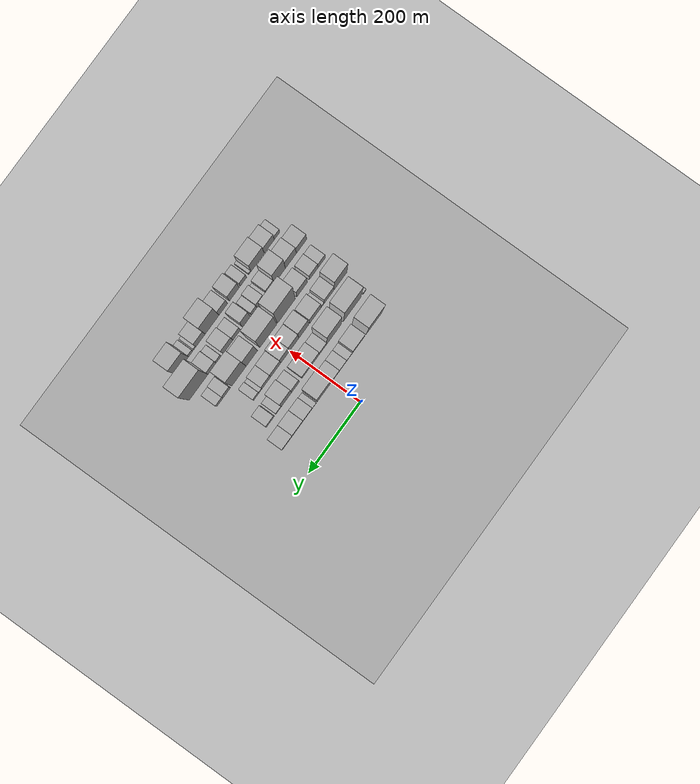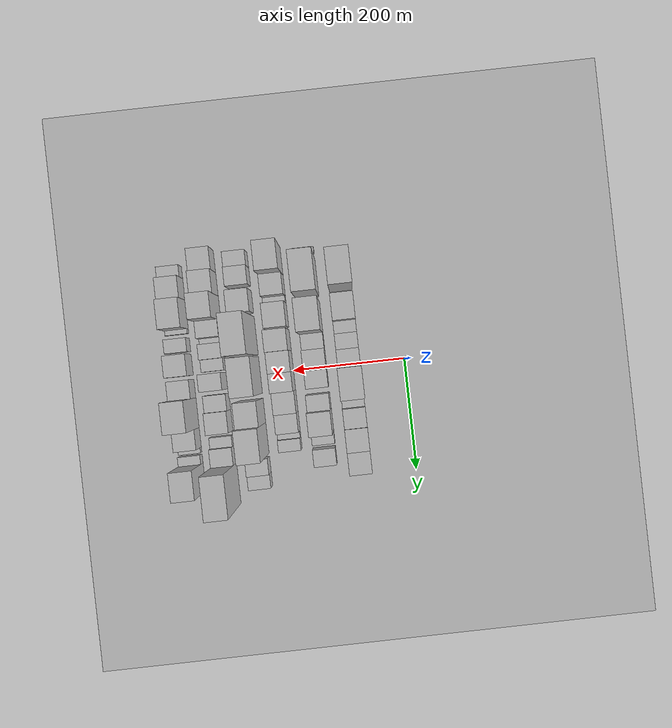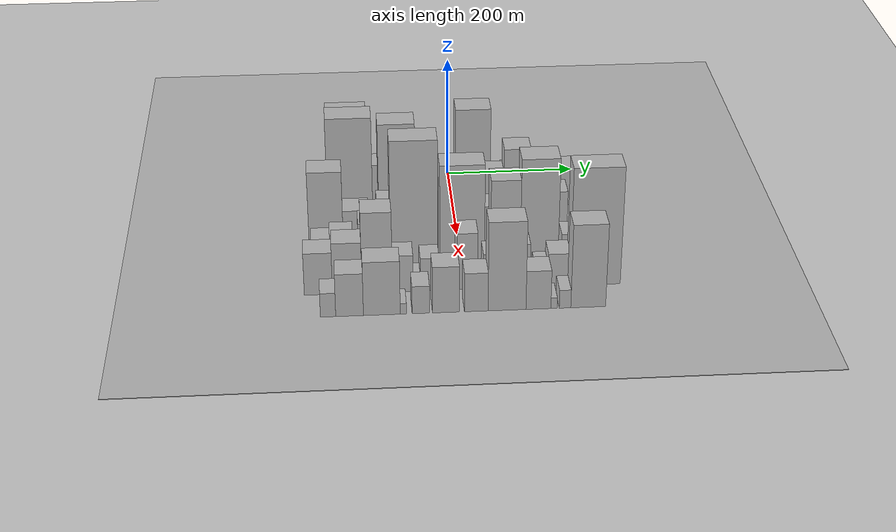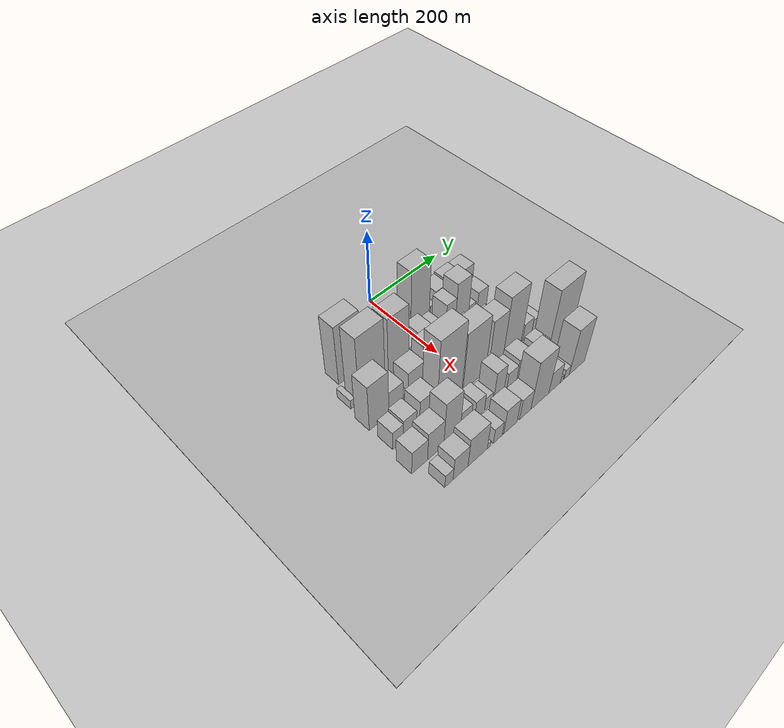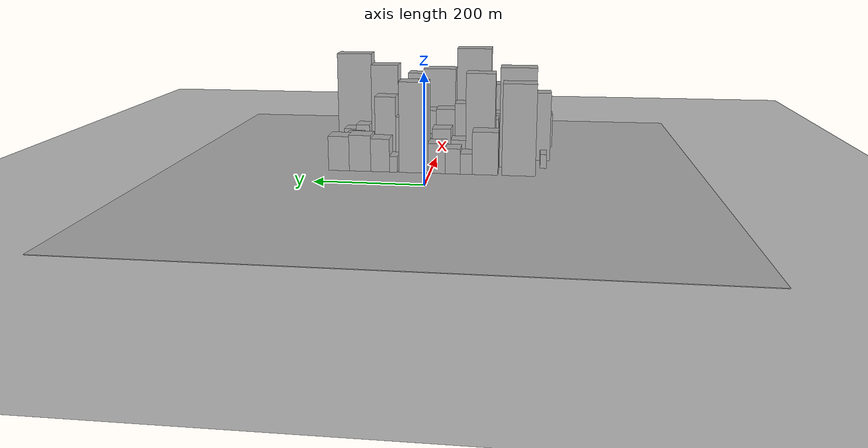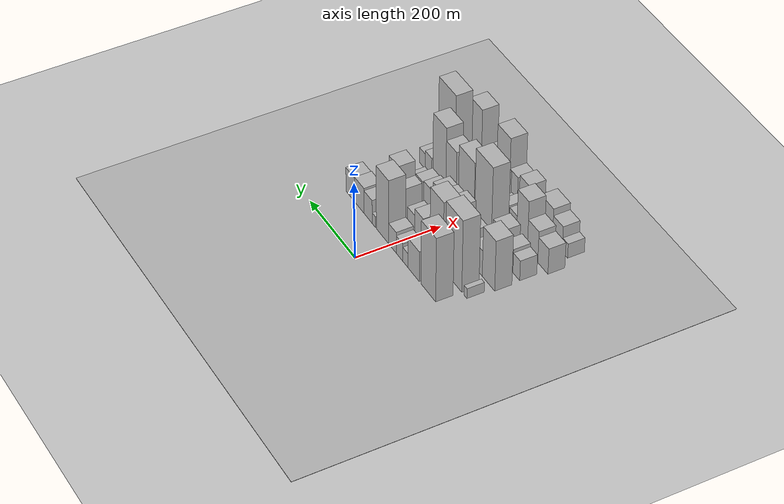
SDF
<sdf version="1.6">
 <world name="default">
  <include><name>ground_plane_1</name><uri>model://HANNAS_ground_plane</uri></include>
  <include>
   <name>ground_plane_2</name>
   <uri>model://HANNAS_ground_plane</uri>
   <pose>100 0 0  0 0 0</pose>
  </include>
  <model name="building_25">
   <static>1</static>
   <pose>100.0000 -163.9431 0 0.000000 0.000000 0.000000</pose>
   <link name="link">
    <pose>0 0 85.50 0 0 0</pose>
    <collision name="collision"><geometry><box><size>40.0000 61.6196 171.0000</size></box></geometry></collision>
    <visual name="visual">
     <cast_shadows>0</cast_shadows>
     <geometry><box><size>40.0000 61.6196 171.0000</size></box></geometry>
     <material>
      <script>
       <uri>model://HANNAS_wall/materials/scripts</uri>
       <uri>model://HANNAS_wall/materials/textures</uri>
       <name>vrc/HANNAS_wall</name>
      </script>
     </material>
    </visual>
   </link>
  </model>
  <model name="building_26">
   <static>1</static>
   <pose>100.0000 -102.3194 0 0.000000 0.000000 0.000000</pose>
   <link name="link">
    <pose>0 0 40.50 0 0 0</pose>
    <collision name="collision"><geometry><box><size>40.0000 47.6278 81.0000</size></box></geometry></collision>
    <visual name="visual">
     <cast_shadows>0</cast_shadows>
     <geometry><box><size>40.0000 47.6278 81.0000</size></box></geometry>
     <material>
      <script>
       <uri>model://HANNAS_wall/materials/scripts</uri>
       <uri>model://HANNAS_wall/materials/textures</uri>
       <name>vrc/HANNAS_wall</name>
      </script>
     </material>
    </visual>
   </link>
  </model>
  <model name="building_27">
   <static>1</static>
   <pose>100.0000 -67.4744 0 0.000000 0.000000 0.000000</pose>
   <link name="link">
    <pose>0 0 19.50 0 0 0</pose>
    <collision name="collision"><geometry><box><size>40.0000 22.0623 39.0000</size></box></geometry></collision>
    <visual name="visual">
     <cast_shadows>0</cast_shadows>
     <geometry><box><size>40.0000 22.0623 39.0000</size></box></geometry>
     <material>
      <script>
       <uri>model://HANNAS_wall/materials/scripts</uri>
       <uri>model://HANNAS_wall/materials/textures</uri>
       <name>vrc/HANNAS_wall</name>
      </script>
     </material>
    </visual>
   </link>
  </model>
  <model name="building_28">
   <static>1</static>
   <pose>100.0000 -42.3867 0 0.000000 0.000000 0.000000</pose>
   <link name="link">
    <pose>0 0 24.00 0 0 0</pose>
    <collision name="collision"><geometry><box><size>40.0000 28.1130 48.0000</size></box></geometry></collision>
    <visual name="visual">
     <cast_shadows>0</cast_shadows>
     <geometry><box><size>40.0000 28.1130 48.0000</size></box></geometry>
     <material>
      <script>
       <uri>model://HANNAS_wall/materials/scripts</uri>
       <uri>model://HANNAS_wall/materials/textures</uri>
       <name>vrc/HANNAS_wall</name>
      </script>
     </material>
    </visual>
   </link>
  </model>
  <model name="building_29">
   <static>1</static>
   <pose>100.0000 -12.2893 0 0.000000 0.000000 0.000000</pose>
   <link name="link">
    <pose>0 0 28.50 0 0 0</pose>
    <collision name="collision"><geometry><box><size>40.0000 32.0819 57.0000</size></box></geometry></collision>
    <visual name="visual">
     <cast_shadows>0</cast_shadows>
     <geometry><box><size>40.0000 32.0819 57.0000</size></box></geometry>
     <material>
      <script>
       <uri>model://HANNAS_wall/materials/scripts</uri>
       <uri>model://HANNAS_wall/materials/textures</uri>
       <name>vrc/HANNAS_wall</name>
      </script>
     </material>
    </visual>
   </link>
  </model>
  <model name="building_30">
   <static>1</static>
   <pose>100.0000 30.7416 0 0.000000 0.000000 0.000000</pose>
   <link name="link">
    <pose>0 0 85.50 0 0 0</pose>
    <collision name="collision"><geometry><box><size>40.0000 53.9798 171.0000</size></box></geometry></collision>
    <visual name="visual">
     <cast_shadows>0</cast_shadows>
     <geometry><box><size>40.0000 53.9798 171.0000</size></box></geometry>
     <material>
      <script>
       <uri>model://HANNAS_wall/materials/scripts</uri>
       <uri>model://HANNAS_wall/materials/textures</uri>
       <name>vrc/HANNAS_wall</name>
      </script>
     </material>
    </visual>
   </link>
  </model>
  <model name="building_31">
   <static>1</static>
   <pose>100.0000 68.3412 0 0.000000 0.000000 0.000000</pose>
   <link name="link">
    <pose>0 0 15.00 0 0 0</pose>
    <collision name="collision"><geometry><box><size>40.0000 15.2195 30.0000</size></box></geometry></collision>
    <visual name="visual">
     <cast_shadows>0</cast_shadows>
     <geometry><box><size>40.0000 15.2195 30.0000</size></box></geometry>
     <material>
      <script>
       <uri>model://HANNAS_wall/materials/scripts</uri>
       <uri>model://HANNAS_wall/materials/textures</uri>
       <name>vrc/HANNAS_wall</name>
      </script>
     </material>
    </visual>
   </link>
  </model>
  <model name="building_32">
   <static>1</static>
   <pose>100.0000 93.6684 0 0.000000 0.000000 0.000000</pose>
   <link name="link">
    <pose>0 0 31.50 0 0 0</pose>
    <collision name="collision"><geometry><box><size>40.0000 35.4347 63.0000</size></box></geometry></collision>
    <visual name="visual">
     <cast_shadows>0</cast_shadows>
     <geometry><box><size>40.0000 35.4347 63.0000</size></box></geometry>
     <material>
      <script>
       <uri>model://HANNAS_wall/materials/scripts</uri>
       <uri>model://HANNAS_wall/materials/textures</uri>
       <name>vrc/HANNAS_wall</name>
      </script>
     </material>
    </visual>
   </link>
  </model>
  <model name="building_33">
   <static>1</static>
   <pose>100.0000 131.9155 0 0.000000 0.000000 0.000000</pose>
   <link name="link">
    <pose>0 0 34.50 0 0 0</pose>
    <collision name="collision"><geometry><box><size>40.0000 41.0596 69.0000</size></box></geometry></collision>
    <visual name="visual">
     <cast_shadows>0</cast_shadows>
     <geometry><box><size>40.0000 41.0596 69.0000</size></box></geometry>
     <material>
      <script>
       <uri>model://HANNAS_wall/materials/scripts</uri>
       <uri>model://HANNAS_wall/materials/textures</uri>
       <name>vrc/HANNAS_wall</name>
      </script>
     </material>
    </visual>
   </link>
  </model>
  <model name="building_34">
   <static>1</static>
   <pose>100.0000 172.2062 0 0.000000 0.000000 0.000000</pose>
   <link name="link">
    <pose>0 0 33.00 0 0 0</pose>
    <collision name="collision"><geometry><box><size>40.0000 39.5216 66.0000</size></box></geometry></collision>
    <visual name="visual">
     <cast_shadows>0</cast_shadows>
     <geometry><box><size>40.0000 39.5216 66.0000</size></box></geometry>
     <material>
      <script>
       <uri>model://HANNAS_wall/materials/scripts</uri>
       <uri>model://HANNAS_wall/materials/textures</uri>
       <name>vrc/HANNAS_wall</name>
      </script>
     </material>
    </visual>
   </link>
  </model>
  <model name="building_77">
   <static>1</static>
   <pose>160.0000 -210.0299 0 0.000000 0.000000 0.000000</pose>
   <link name="link">
    <pose>0 0 13.50 0 0 0</pose>
    <collision name="collision"><geometry><box><size>40.0000 11.9604 27.0000</size></box></geometry></collision>
    <visual name="visual">
     <cast_shadows>0</cast_shadows>
     <geometry><box><size>40.0000 11.9604 27.0000</size></box></geometry>
     <material>
      <script>
       <uri>model://HANNAS_wall/materials/scripts</uri>
       <uri>model://HANNAS_wall/materials/textures</uri>
       <name>vrc/HANNAS_wall</name>
      </script>
     </material>
    </visual>
   </link>
  </model>
  <model name="building_78">
   <static>1</static>
   <pose>160.0000 -160.8202 0 0.000000 0.000000 0.000000</pose>
   <link name="link">
    <pose>0 0 96.00 0 0 0</pose>
    <collision name="collision"><geometry><box><size>40.0000 68.4589 192.0000</size></box></geometry></collision>
    <visual name="visual">
     <cast_shadows>0</cast_shadows>
     <geometry><box><size>40.0000 68.4589 192.0000</size></box></geometry>
     <material>
      <script>
       <uri>model://HANNAS_wall/materials/scripts</uri>
       <uri>model://HANNAS_wall/materials/textures</uri>
       <name>vrc/HANNAS_wall</name>
      </script>
     </material>
    </visual>
   </link>
  </model>
  <model name="building_79">
   <static>1</static>
   <pose>160.0000 -89.7848 0 0.000000 0.000000 0.000000</pose>
   <link name="link">
    <pose>0 0 90.00 0 0 0</pose>
    <collision name="collision"><geometry><box><size>40.0000 55.6120 180.0000</size></box></geometry></collision>
    <visual name="visual">
     <cast_shadows>0</cast_shadows>
     <geometry><box><size>40.0000 55.6120 180.0000</size></box></geometry>
     <material>
      <script>
       <uri>model://HANNAS_wall/materials/scripts</uri>
       <uri>model://HANNAS_wall/materials/textures</uri>
       <name>vrc/HANNAS_wall</name>
      </script>
     </material>
    </visual>
   </link>
  </model>
  <model name="building_80">
   <static>1</static>
   <pose>160.0000 -47.7329 0 0.000000 0.000000 0.000000</pose>
   <link name="link">
    <pose>0 0 25.50 0 0 0</pose>
    <collision name="collision"><geometry><box><size>40.0000 28.4916 51.0000</size></box></geometry></collision>
    <visual name="visual">
     <cast_shadows>0</cast_shadows>
     <geometry><box><size>40.0000 28.4916 51.0000</size></box></geometry>
     <material>
      <script>
       <uri>model://HANNAS_wall/materials/scripts</uri>
       <uri>model://HANNAS_wall/materials/textures</uri>
       <name>vrc/HANNAS_wall</name>
      </script>
     </material>
    </visual>
   </link>
  </model>
  <model name="building_81">
   <static>1</static>
   <pose>160.0000 -15.4796 0 0.000000 0.000000 0.000000</pose>
   <link name="link">
    <pose>0 0 36.00 0 0 0</pose>
    <collision name="collision"><geometry><box><size>40.0000 36.0150 72.0000</size></box></geometry></collision>
    <visual name="visual">
     <cast_shadows>0</cast_shadows>
     <geometry><box><size>40.0000 36.0150 72.0000</size></box></geometry>
     <material>
      <script>
       <uri>model://HANNAS_wall/materials/scripts</uri>
       <uri>model://HANNAS_wall/materials/textures</uri>
       <name>vrc/HANNAS_wall</name>
      </script>
     </material>
    </visual>
   </link>
  </model>
  <model name="building_82">
   <static>1</static>
   <pose>160.0000 18.4405 0 0.000000 0.000000 0.000000</pose>
   <link name="link">
    <pose>0 0 27.00 0 0 0</pose>
    <collision name="collision"><geometry><box><size>40.0000 31.8252 54.0000</size></box></geometry></collision>
    <visual name="visual">
     <cast_shadows>0</cast_shadows>
     <geometry><box><size>40.0000 31.8252 54.0000</size></box></geometry>
     <material>
      <script>
       <uri>model://HANNAS_wall/materials/scripts</uri>
       <uri>model://HANNAS_wall/materials/textures</uri>
       <name>vrc/HANNAS_wall</name>
      </script>
     </material>
    </visual>
   </link>
  </model>
  <model name="building_83">
   <static>1</static>
   <pose>160.0000 58.7880 0 0.000000 0.000000 0.000000</pose>
   <link name="link">
    <pose>0 0 46.50 0 0 0</pose>
    <collision name="collision"><geometry><box><size>40.0000 28.8698 93.0000</size></box></geometry></collision>
    <visual name="visual">
     <cast_shadows>0</cast_shadows>
     <geometry><box><size>40.0000 28.8698 93.0000</size></box></geometry>
     <material>
      <script>
       <uri>model://HANNAS_wall/materials/scripts</uri>
       <uri>model://HANNAS_wall/materials/textures</uri>
       <name>vrc/HANNAS_wall</name>
      </script>
     </material>
    </visual>
   </link>
  </model>
  <model name="building_84">
   <static>1</static>
   <pose>160.0000 93.4086 0 0.000000 0.000000 0.000000</pose>
   <link name="link">
    <pose>0 0 66.00 0 0 0</pose>
    <collision name="collision"><geometry><box><size>40.0000 40.3714 132.0000</size></box></geometry></collision>
    <visual name="visual">
     <cast_shadows>0</cast_shadows>
     <geometry><box><size>40.0000 40.3714 132.0000</size></box></geometry>
     <material>
      <script>
       <uri>model://HANNAS_wall/materials/scripts</uri>
       <uri>model://HANNAS_wall/materials/textures</uri>
       <name>vrc/HANNAS_wall</name>
      </script>
     </material>
    </visual>
   </link>
  </model>
  <model name="building_85">
   <static>1</static>
   <pose>160.0000 124.3804 0 0.000000 0.000000 0.000000</pose>
   <link name="link">
    <pose>0 0 18.00 0 0 0</pose>
    <collision name="collision"><geometry><box><size>40.0000 21.5722 36.0000</size></box></geometry></collision>
    <visual name="visual">
     <cast_shadows>0</cast_shadows>
     <geometry><box><size>40.0000 21.5722 36.0000</size></box></geometry>
     <material>
      <script>
       <uri>model://HANNAS_wall/materials/scripts</uri>
       <uri>model://HANNAS_wall/materials/textures</uri>
       <name>vrc/HANNAS_wall</name>
      </script>
     </material>
    </visual>
   </link>
  </model>
  <model name="building_86">
   <static>1</static>
   <pose>160.0000 156.3313 0 0.000000 0.000000 0.000000</pose>
   <link name="link">
    <pose>0 0 28.50 0 0 0</pose>
    <collision name="collision"><geometry><box><size>40.0000 30.3295 57.0000</size></box></geometry></collision>
    <visual name="visual">
     <cast_shadows>0</cast_shadows>
     <geometry><box><size>40.0000 30.3295 57.0000</size></box></geometry>
     <material>
      <script>
       <uri>model://HANNAS_wall/materials/scripts</uri>
       <uri>model://HANNAS_wall/materials/textures</uri>
       <name>vrc/HANNAS_wall</name>
      </script>
     </material>
    </visual>
   </link>
  </model>
  <model name="building_133">
   <static>1</static>
   <pose>220.0000 -198.3228 0 0.000000 0.000000 0.000000</pose>
   <link name="link">
    <pose>0 0 67.50 0 0 0</pose>
    <collision name="collision"><geometry><box><size>40.0000 50.7325 135.0000</size></box></geometry></collision>
    <visual name="visual">
     <cast_shadows>0</cast_shadows>
     <geometry><box><size>40.0000 50.7325 135.0000</size></box></geometry>
     <material>
      <script>
       <uri>model://HANNAS_wall/materials/scripts</uri>
       <uri>model://HANNAS_wall/materials/textures</uri>
       <name>vrc/HANNAS_wall</name>
      </script>
     </material>
    </visual>
   </link>
  </model>
  <model name="building_134">
   <static>1</static>
   <pose>220.0000 -153.9247 0 0.000000 0.000000 0.000000</pose>
   <link name="link">
    <pose>0 0 34.50 0 0 0</pose>
    <collision name="collision"><geometry><box><size>40.0000 38.0637 69.0000</size></box></geometry></collision>
    <visual name="visual">
     <cast_shadows>0</cast_shadows>
     <geometry><box><size>40.0000 38.0637 69.0000</size></box></geometry>
     <material>
      <script>
       <uri>model://HANNAS_wall/materials/scripts</uri>
       <uri>model://HANNAS_wall/materials/textures</uri>
       <name>vrc/HANNAS_wall</name>
      </script>
     </material>
    </visual>
   </link>
  </model>
  <model name="building_135">
   <static>1</static>
   <pose>220.0000 -128.4910 0 0.000000 0.000000 0.000000</pose>
   <link name="link">
    <pose>0 0 13.50 0 0 0</pose>
    <collision name="collision"><geometry><box><size>40.0000 12.8037 27.0000</size></box></geometry></collision>
    <visual name="visual">
     <cast_shadows>0</cast_shadows>
     <geometry><box><size>40.0000 12.8037 27.0000</size></box></geometry>
     <material>
      <script>
       <uri>model://HANNAS_wall/materials/scripts</uri>
       <uri>model://HANNAS_wall/materials/textures</uri>
       <name>vrc/HANNAS_wall</name>
      </script>
     </material>
    </visual>
   </link>
  </model>
  <model name="building_136">
   <static>1</static>
   <pose>220.0000 -100.1214 0 0.000000 0.000000 0.000000</pose>
   <link name="link">
    <pose>0 0 40.50 0 0 0</pose>
    <collision name="collision"><geometry><box><size>40.0000 43.9356 81.0000</size></box></geometry></collision>
    <visual name="visual">
     <cast_shadows>0</cast_shadows>
     <geometry><box><size>40.0000 43.9356 81.0000</size></box></geometry>
     <material>
      <script>
       <uri>model://HANNAS_wall/materials/scripts</uri>
       <uri>model://HANNAS_wall/materials/textures</uri>
       <name>vrc/HANNAS_wall</name>
      </script>
     </material>
    </visual>
   </link>
  </model>
  <model name="building_137">
   <static>1</static>
   <pose>220.0000 -55.1766 0 0.000000 0.000000 0.000000</pose>
   <link name="link">
    <pose>0 0 55.50 0 0 0</pose>
    <collision name="collision"><geometry><box><size>40.0000 37.9541 111.0000</size></box></geometry></collision>
    <visual name="visual">
     <cast_shadows>0</cast_shadows>
     <geometry><box><size>40.0000 37.9541 111.0000</size></box></geometry>
     <material>
      <script>
       <uri>model://HANNAS_wall/materials/scripts</uri>
       <uri>model://HANNAS_wall/materials/textures</uri>
       <name>vrc/HANNAS_wall</name>
      </script>
     </material>
    </visual>
   </link>
  </model>
  <model name="building_138">
   <static>1</static>
   <pose>220.0000 -17.7515 0 0.000000 0.000000 0.000000</pose>
   <link name="link">
    <pose>0 0 49.50 0 0 0</pose>
    <collision name="collision"><geometry><box><size>40.0000 36.8961 99.0000</size></box></geometry></collision>
    <visual name="visual">
     <cast_shadows>0</cast_shadows>
     <geometry><box><size>40.0000 36.8961 99.0000</size></box></geometry>
     <material>
      <script>
       <uri>model://HANNAS_wall/materials/scripts</uri>
       <uri>model://HANNAS_wall/materials/textures</uri>
       <name>vrc/HANNAS_wall</name>
      </script>
     </material>
    </visual>
   </link>
  </model>
  <model name="building_139">
   <static>1</static>
   <pose>220.0000 17.4846 0 0.000000 0.000000 0.000000</pose>
   <link name="link">
    <pose>0 0 48.00 0 0 0</pose>
    <collision name="collision"><geometry><box><size>40.0000 33.5761 96.0000</size></box></geometry></collision>
    <visual name="visual">
     <cast_shadows>0</cast_shadows>
     <geometry><box><size>40.0000 33.5761 96.0000</size></box></geometry>
     <material>
      <script>
       <uri>model://HANNAS_wall/materials/scripts</uri>
       <uri>model://HANNAS_wall/materials/textures</uri>
       <name>vrc/HANNAS_wall</name>
      </script>
     </material>
    </visual>
   </link>
  </model>
  <model name="building_140">
   <static>1</static>
   <pose>220.0000 53.7973 0 0.000000 0.000000 0.000000</pose>
   <link name="link">
    <pose>0 0 34.50 0 0 0</pose>
    <collision name="collision"><geometry><box><size>40.0000 39.0493 69.0000</size></box></geometry></collision>
    <visual name="visual">
     <cast_shadows>0</cast_shadows>
     <geometry><box><size>40.0000 39.0493 69.0000</size></box></geometry>
     <material>
      <script>
       <uri>model://HANNAS_wall/materials/scripts</uri>
       <uri>model://HANNAS_wall/materials/textures</uri>
       <name>vrc/HANNAS_wall</name>
      </script>
     </material>
    </visual>
   </link>
  </model>
  <model name="building_141">
   <static>1</static>
   <pose>220.0000 90.2574 0 0.000000 0.000000 0.000000</pose>
   <link name="link">
    <pose>0 0 31.50 0 0 0</pose>
    <collision name="collision"><geometry><box><size>40.0000 33.8709 63.0000</size></box></geometry></collision>
    <visual name="visual">
     <cast_shadows>0</cast_shadows>
     <geometry><box><size>40.0000 33.8709 63.0000</size></box></geometry>
     <material>
      <script>
       <uri>model://HANNAS_wall/materials/scripts</uri>
       <uri>model://HANNAS_wall/materials/textures</uri>
       <name>vrc/HANNAS_wall</name>
      </script>
     </material>
    </visual>
   </link>
  </model>
  <model name="building_142">
   <static>1</static>
   <pose>220.0000 113.0393 0 0.000000 0.000000 0.000000</pose>
   <link name="link">
    <pose>0 0 13.50 0 0 0</pose>
    <collision name="collision"><geometry><box><size>40.0000 11.6929 27.0000</size></box></geometry></collision>
    <visual name="visual">
     <cast_shadows>0</cast_shadows>
     <geometry><box><size>40.0000 11.6929 27.0000</size></box></geometry>
     <material>
      <script>
       <uri>model://HANNAS_wall/materials/scripts</uri>
       <uri>model://HANNAS_wall/materials/textures</uri>
       <name>vrc/HANNAS_wall</name>
      </script>
     </material>
    </visual>
   </link>
  </model>
  <model name="building_143">
   <static>1</static>
   <pose>220.0000 129.5388 0 0.000000 0.000000 0.000000</pose>
   <link name="link">
    <pose>0 0 21.00 0 0 0</pose>
    <collision name="collision"><geometry><box><size>40.0000 21.3060 42.0000</size></box></geometry></collision>
    <visual name="visual">
     <cast_shadows>0</cast_shadows>
     <geometry><box><size>40.0000 21.3060 42.0000</size></box></geometry>
     <material>
      <script>
       <uri>model://HANNAS_wall/materials/scripts</uri>
       <uri>model://HANNAS_wall/materials/textures</uri>
       <name>vrc/HANNAS_wall</name>
      </script>
     </material>
    </visual>
   </link>
  </model>
  <model name="building_188">
   <static>1</static>
   <pose>280.0000 -206.8441 0 0.000000 0.000000 0.000000</pose>
   <link name="link">
    <pose>0 0 27.00 0 0 0</pose>
    <collision name="collision"><geometry><box><size>40.0000 27.8106 54.0000</size></box></geometry></collision>
    <visual name="visual">
     <cast_shadows>0</cast_shadows>
     <geometry><box><size>40.0000 27.8106 54.0000</size></box></geometry>
     <material>
      <script>
       <uri>model://HANNAS_wall/materials/scripts</uri>
       <uri>model://HANNAS_wall/materials/textures</uri>
       <name>vrc/HANNAS_wall</name>
      </script>
     </material>
    </visual>
   </link>
  </model>
  <model name="building_189">
   <static>1</static>
   <pose>280.0000 -176.1177 0 0.000000 0.000000 0.000000</pose>
   <link name="link">
    <pose>0 0 31.50 0 0 0</pose>
    <collision name="collision"><geometry><box><size>40.0000 33.6422 63.0000</size></box></geometry></collision>
    <visual name="visual">
     <cast_shadows>0</cast_shadows>
     <geometry><box><size>40.0000 33.6422 63.0000</size></box></geometry>
     <material>
      <script>
       <uri>model://HANNAS_wall/materials/scripts</uri>
       <uri>model://HANNAS_wall/materials/textures</uri>
       <name>vrc/HANNAS_wall</name>
      </script>
     </material>
    </visual>
   </link>
  </model>
  <model name="building_190">
   <static>1</static>
   <pose>280.0000 -130.8653 0 0.000000 0.000000 0.000000</pose>
   <link name="link">
    <pose>0 0 40.50 0 0 0</pose>
    <collision name="collision"><geometry><box><size>40.0000 40.8627 81.0000</size></box></geometry></collision>
    <visual name="visual">
     <cast_shadows>0</cast_shadows>
     <geometry><box><size>40.0000 40.8627 81.0000</size></box></geometry>
     <material>
      <script>
       <uri>model://HANNAS_wall/materials/scripts</uri>
       <uri>model://HANNAS_wall/materials/textures</uri>
       <name>vrc/HANNAS_wall</name>
      </script>
     </material>
    </visual>
   </link>
  </model>
  <model name="building_191">
   <static>1</static>
   <pose>280.0000 -69.7653 0 0.000000 0.000000 0.000000</pose>
   <link name="link">
    <pose>0 0 106.50 0 0 0</pose>
    <collision name="collision"><geometry><box><size>40.0000 69.3373 213.0000</size></box></geometry></collision>
    <visual name="visual">
     <cast_shadows>0</cast_shadows>
     <geometry><box><size>40.0000 69.3373 213.0000</size></box></geometry>
     <material>
      <script>
       <uri>model://HANNAS_wall/materials/scripts</uri>
       <uri>model://HANNAS_wall/materials/textures</uri>
       <name>vrc/HANNAS_wall</name>
      </script>
     </material>
    </visual>
   </link>
  </model>
  <model name="building_192">
   <static>1</static>
   <pose>280.0000 0.7955 0 0.000000 0.000000 0.000000</pose>
   <link name="link">
    <pose>0 0 85.50 0 0 0</pose>
    <collision name="collision"><geometry><box><size>40.0000 65.7843 171.0000</size></box></geometry></collision>
    <visual name="visual">
     <cast_shadows>0</cast_shadows>
     <geometry><box><size>40.0000 65.7843 171.0000</size></box></geometry>
     <material>
      <script>
       <uri>model://HANNAS_wall/materials/scripts</uri>
       <uri>model://HANNAS_wall/materials/textures</uri>
       <name>vrc/HANNAS_wall</name>
      </script>
     </material>
    </visual>
   </link>
  </model>
  <model name="building_193">
   <static>1</static>
   <pose>280.0000 64.5966 0 0.000000 0.000000 0.000000</pose>
   <link name="link">
    <pose>0 0 72.00 0 0 0</pose>
    <collision name="collision"><geometry><box><size>40.0000 43.8179 144.0000</size></box></geometry></collision>
    <visual name="visual">
     <cast_shadows>0</cast_shadows>
     <geometry><box><size>40.0000 43.8179 144.0000</size></box></geometry>
     <material>
      <script>
       <uri>model://HANNAS_wall/materials/scripts</uri>
       <uri>model://HANNAS_wall/materials/textures</uri>
       <name>vrc/HANNAS_wall</name>
      </script>
     </material>
    </visual>
   </link>
  </model>
  <model name="building_194">
   <static>1</static>
   <pose>280.0000 114.5318 0 0.000000 0.000000 0.000000</pose>
   <link name="link">
    <pose>0 0 88.50 0 0 0</pose>
    <collision name="collision"><geometry><box><size>40.0000 56.0524 177.0000</size></box></geometry></collision>
    <visual name="visual">
     <cast_shadows>0</cast_shadows>
     <geometry><box><size>40.0000 56.0524 177.0000</size></box></geometry>
     <material>
      <script>
       <uri>model://HANNAS_wall/materials/scripts</uri>
       <uri>model://HANNAS_wall/materials/textures</uri>
       <name>vrc/HANNAS_wall</name>
      </script>
     </material>
    </visual>
   </link>
  </model>
  <model name="building_195">
   <static>1</static>
   <pose>280.0000 161.8026 0 0.000000 0.000000 0.000000</pose>
   <link name="link">
    <pose>0 0 25.50 0 0 0</pose>
    <collision name="collision"><geometry><box><size>40.0000 28.4892 51.0000</size></box></geometry></collision>
    <visual name="visual">
     <cast_shadows>0</cast_shadows>
     <geometry><box><size>40.0000 28.4892 51.0000</size></box></geometry>
     <material>
      <script>
       <uri>model://HANNAS_wall/materials/scripts</uri>
       <uri>model://HANNAS_wall/materials/textures</uri>
       <name>vrc/HANNAS_wall</name>
      </script>
     </material>
    </visual>
   </link>
  </model>
  <model name="building_196">
   <static>1</static>
   <pose>280.0000 188.4070 0 0.000000 0.000000 0.000000</pose>
   <link name="link">
    <pose>0 0 21.00 0 0 0</pose>
    <collision name="collision"><geometry><box><size>40.0000 24.7196 42.0000</size></box></geometry></collision>
    <visual name="visual">
     <cast_shadows>0</cast_shadows>
     <geometry><box><size>40.0000 24.7196 42.0000</size></box></geometry>
     <material>
      <script>
       <uri>model://HANNAS_wall/materials/scripts</uri>
       <uri>model://HANNAS_wall/materials/textures</uri>
       <name>vrc/HANNAS_wall</name>
      </script>
     </material>
    </visual>
   </link>
  </model>
  <model name="building_240">
   <static>1</static>
   <pose>340.0000 -210.9634 0 0.000000 0.000000 0.000000</pose>
   <link name="link">
    <pose>0 0 34.50 0 0 0</pose>
    <collision name="collision"><geometry><box><size>40.0000 40.4017 69.0000</size></box></geometry></collision>
    <visual name="visual">
     <cast_shadows>0</cast_shadows>
     <geometry><box><size>40.0000 40.4017 69.0000</size></box></geometry>
     <material>
      <script>
       <uri>model://HANNAS_wall/materials/scripts</uri>
       <uri>model://HANNAS_wall/materials/textures</uri>
       <name>vrc/HANNAS_wall</name>
      </script>
     </material>
    </visual>
   </link>
  </model>
  <model name="building_241">
   <static>1</static>
   <pose>340.0000 -169.6190 0 0.000000 0.000000 0.000000</pose>
   <link name="link">
    <pose>0 0 42.00 0 0 0</pose>
    <collision name="collision"><geometry><box><size>40.0000 42.2873 84.0000</size></box></geometry></collision>
    <visual name="visual">
     <cast_shadows>0</cast_shadows>
     <geometry><box><size>40.0000 42.2873 84.0000</size></box></geometry>
     <material>
      <script>
       <uri>model://HANNAS_wall/materials/scripts</uri>
       <uri>model://HANNAS_wall/materials/textures</uri>
       <name>vrc/HANNAS_wall</name>
      </script>
     </material>
    </visual>
   </link>
  </model>
  <model name="building_242">
   <static>1</static>
   <pose>340.0000 -126.4937 0 0.000000 0.000000 0.000000</pose>
   <link name="link">
    <pose>0 0 66.00 0 0 0</pose>
    <collision name="collision"><geometry><box><size>40.0000 43.9632 132.0000</size></box></geometry></collision>
    <visual name="visual">
     <cast_shadows>0</cast_shadows>
     <geometry><box><size>40.0000 43.9632 132.0000</size></box></geometry>
     <material>
      <script>
       <uri>model://HANNAS_wall/materials/scripts</uri>
       <uri>model://HANNAS_wall/materials/textures</uri>
       <name>vrc/HANNAS_wall</name>
      </script>
     </material>
    </visual>
   </link>
  </model>
  <model name="building_243">
   <static>1</static>
   <pose>340.0000 -89.5100 0 0.000000 0.000000 0.000000</pose>
   <link name="link">
    <pose>0 0 30.00 0 0 0</pose>
    <collision name="collision"><geometry><box><size>40.0000 30.0044 60.0000</size></box></geometry></collision>
    <visual name="visual">
     <cast_shadows>0</cast_shadows>
     <geometry><box><size>40.0000 30.0044 60.0000</size></box></geometry>
     <material>
      <script>
       <uri>model://HANNAS_wall/materials/scripts</uri>
       <uri>model://HANNAS_wall/materials/textures</uri>
       <name>vrc/HANNAS_wall</name>
      </script>
     </material>
    </visual>
   </link>
  </model>
  <model name="building_244">
   <static>1</static>
   <pose>340.0000 -69.2455 0 0.000000 0.000000 0.000000</pose>
   <link name="link">
    <pose>0 0 12.00 0 0 0</pose>
    <collision name="collision"><geometry><box><size>40.0000 10.5246 24.0000</size></box></geometry></collision>
    <visual name="visual">
     <cast_shadows>0</cast_shadows>
     <geometry><box><size>40.0000 10.5246 24.0000</size></box></geometry>
     <material>
      <script>
       <uri>model://HANNAS_wall/materials/scripts</uri>
       <uri>model://HANNAS_wall/materials/textures</uri>
       <name>vrc/HANNAS_wall</name>
      </script>
     </material>
    </visual>
   </link>
  </model>
  <model name="building_245">
   <static>1</static>
   <pose>340.0000 -50.3882 0 0.000000 0.000000 0.000000</pose>
   <link name="link">
    <pose>0 0 27.00 0 0 0</pose>
    <collision name="collision"><geometry><box><size>40.0000 27.1899 54.0000</size></box></geometry></collision>
    <visual name="visual">
     <cast_shadows>0</cast_shadows>
     <geometry><box><size>40.0000 27.1899 54.0000</size></box></geometry>
     <material>
      <script>
       <uri>model://HANNAS_wall/materials/scripts</uri>
       <uri>model://HANNAS_wall/materials/textures</uri>
       <name>vrc/HANNAS_wall</name>
      </script>
     </material>
    </visual>
   </link>
  </model>
  <model name="building_246">
   <static>1</static>
   <pose>340.0000 -25.9913 0 0.000000 0.000000 0.000000</pose>
   <link name="link">
    <pose>0 0 19.50 0 0 0</pose>
    <collision name="collision"><geometry><box><size>40.0000 21.6040 39.0000</size></box></geometry></collision>
    <visual name="visual">
     <cast_shadows>0</cast_shadows>
     <geometry><box><size>40.0000 21.6040 39.0000</size></box></geometry>
     <material>
      <script>
       <uri>model://HANNAS_wall/materials/scripts</uri>
       <uri>model://HANNAS_wall/materials/textures</uri>
       <name>vrc/HANNAS_wall</name>
      </script>
     </material>
    </visual>
   </link>
  </model>
  <model name="building_247">
   <static>1</static>
   <pose>340.0000 3.8026 0 0.000000 0.000000 0.000000</pose>
   <link name="link">
    <pose>0 0 46.50 0 0 0</pose>
    <collision name="collision"><geometry><box><size>40.0000 29.9836 93.0000</size></box></geometry></collision>
    <visual name="visual">
     <cast_shadows>0</cast_shadows>
     <geometry><box><size>40.0000 29.9836 93.0000</size></box></geometry>
     <material>
      <script>
       <uri>model://HANNAS_wall/materials/scripts</uri>
       <uri>model://HANNAS_wall/materials/textures</uri>
       <name>vrc/HANNAS_wall</name>
      </script>
     </material>
    </visual>
   </link>
  </model>
  <model name="building_248">
   <static>1</static>
   <pose>340.0000 41.5917 0 0.000000 0.000000 0.000000</pose>
   <link name="link">
    <pose>0 0 28.50 0 0 0</pose>
    <collision name="collision"><geometry><box><size>40.0000 29.5946 57.0000</size></box></geometry></collision>
    <visual name="visual">
     <cast_shadows>0</cast_shadows>
     <geometry><box><size>40.0000 29.5946 57.0000</size></box></geometry>
     <material>
      <script>
       <uri>model://HANNAS_wall/materials/scripts</uri>
       <uri>model://HANNAS_wall/materials/textures</uri>
       <name>vrc/HANNAS_wall</name>
      </script>
     </material>
    </visual>
   </link>
  </model>
  <model name="building_249">
   <static>1</static>
   <pose>340.0000 75.4449 0 0.000000 0.000000 0.000000</pose>
   <link name="link">
    <pose>0 0 36.00 0 0 0</pose>
    <collision name="collision"><geometry><box><size>40.0000 38.1119 72.0000</size></box></geometry></collision>
    <visual name="visual">
     <cast_shadows>0</cast_shadows>
     <geometry><box><size>40.0000 38.1119 72.0000</size></box></geometry>
     <material>
      <script>
       <uri>model://HANNAS_wall/materials/scripts</uri>
       <uri>model://HANNAS_wall/materials/textures</uri>
       <name>vrc/HANNAS_wall</name>
      </script>
     </material>
    </visual>
   </link>
  </model>
  <model name="building_250">
   <static>1</static>
   <pose>340.0000 111.2304 0 0.000000 0.000000 0.000000</pose>
   <link name="link">
    <pose>0 0 18.00 0 0 0</pose>
    <collision name="collision"><geometry><box><size>40.0000 19.4590 36.0000</size></box></geometry></collision>
    <visual name="visual">
     <cast_shadows>0</cast_shadows>
     <geometry><box><size>40.0000 19.4590 36.0000</size></box></geometry>
     <material>
      <script>
       <uri>model://HANNAS_wall/materials/scripts</uri>
       <uri>model://HANNAS_wall/materials/textures</uri>
       <name>vrc/HANNAS_wall</name>
      </script>
     </material>
    </visual>
   </link>
  </model>
  <model name="building_251">
   <static>1</static>
   <pose>340.0000 137.0272 0 0.000000 0.000000 0.000000</pose>
   <link name="link">
    <pose>0 0 27.00 0 0 0</pose>
    <collision name="collision"><geometry><box><size>40.0000 32.1346 54.0000</size></box></geometry></collision>
    <visual name="visual">
     <cast_shadows>0</cast_shadows>
     <geometry><box><size>40.0000 32.1346 54.0000</size></box></geometry>
     <material>
      <script>
       <uri>model://HANNAS_wall/materials/scripts</uri>
       <uri>model://HANNAS_wall/materials/textures</uri>
       <name>vrc/HANNAS_wall</name>
      </script>
     </material>
    </visual>
   </link>
  </model>
  <model name="building_252">
   <static>1</static>
   <pose>340.0000 189.7437 0 0.000000 0.000000 0.000000</pose>
   <link name="link">
    <pose>0 0 96.00 0 0 0</pose>
    <collision name="collision"><geometry><box><size>40.0000 73.2983 192.0000</size></box></geometry></collision>
    <visual name="visual">
     <cast_shadows>0</cast_shadows>
     <geometry><box><size>40.0000 73.2983 192.0000</size></box></geometry>
     <material>
      <script>
       <uri>model://HANNAS_wall/materials/scripts</uri>
       <uri>model://HANNAS_wall/materials/textures</uri>
       <name>vrc/HANNAS_wall</name>
      </script>
     </material>
    </visual>
   </link>
  </model>
  <model name="building_292">
   <static>1</static>
   <pose>400.0000 -197.7506 0 0.000000 0.000000 0.000000</pose>
   <link name="link">
    <pose>0 0 19.50 0 0 0</pose>
    <collision name="collision"><geometry><box><size>40.0000 21.5954 39.0000</size></box></geometry></collision>
    <visual name="visual">
     <cast_shadows>0</cast_shadows>
     <geometry><box><size>40.0000 21.5954 39.0000</size></box></geometry>
     <material>
      <script>
       <uri>model://HANNAS_wall/materials/scripts</uri>
       <uri>model://HANNAS_wall/materials/textures</uri>
       <name>vrc/HANNAS_wall</name>
      </script>
     </material>
    </visual>
   </link>
  </model>
  <model name="building_293">
   <static>1</static>
   <pose>400.0000 -167.4325 0 0.000000 0.000000 0.000000</pose>
   <link name="link">
    <pose>0 0 34.50 0 0 0</pose>
    <collision name="collision"><geometry><box><size>40.0000 39.0408 69.0000</size></box></geometry></collision>
    <visual name="visual">
     <cast_shadows>0</cast_shadows>
     <geometry><box><size>40.0000 39.0408 69.0000</size></box></geometry>
     <material>
      <script>
       <uri>model://HANNAS_wall/materials/scripts</uri>
       <uri>model://HANNAS_wall/materials/textures</uri>
       <name>vrc/HANNAS_wall</name>
      </script>
     </material>
    </visual>
   </link>
  </model>
  <model name="building_294">
   <static>1</static>
   <pose>400.0000 -121.9070 0 0.000000 0.000000 0.000000</pose>
   <link name="link">
    <pose>0 0 43.50 0 0 0</pose>
    <collision name="collision"><geometry><box><size>40.0000 52.0103 87.0000</size></box></geometry></collision>
    <visual name="visual">
     <cast_shadows>0</cast_shadows>
     <geometry><box><size>40.0000 52.0103 87.0000</size></box></geometry>
     <material>
      <script>
       <uri>model://HANNAS_wall/materials/scripts</uri>
       <uri>model://HANNAS_wall/materials/textures</uri>
       <name>vrc/HANNAS_wall</name>
      </script>
     </material>
    </visual>
   </link>
  </model>
  <model name="building_295">
   <static>1</static>
   <pose>400.0000 -91.5260 0 0.000000 0.000000 0.000000</pose>
   <link name="link">
    <pose>0 0 9.00 0 0 0</pose>
    <collision name="collision"><geometry><box><size>40.0000 8.7518 18.0000</size></box></geometry></collision>
    <visual name="visual">
     <cast_shadows>0</cast_shadows>
     <geometry><box><size>40.0000 8.7518 18.0000</size></box></geometry>
     <material>
      <script>
       <uri>model://HANNAS_wall/materials/scripts</uri>
       <uri>model://HANNAS_wall/materials/textures</uri>
       <name>vrc/HANNAS_wall</name>
      </script>
     </material>
    </visual>
   </link>
  </model>
  <model name="building_296">
   <static>1</static>
   <pose>400.0000 -66.7319 0 0.000000 0.000000 0.000000</pose>
   <link name="link">
    <pose>0 0 22.50 0 0 0</pose>
    <collision name="collision"><geometry><box><size>40.0000 24.8364 45.0000</size></box></geometry></collision>
    <visual name="visual">
     <cast_shadows>0</cast_shadows>
     <geometry><box><size>40.0000 24.8364 45.0000</size></box></geometry>
     <material>
      <script>
       <uri>model://HANNAS_wall/materials/scripts</uri>
       <uri>model://HANNAS_wall/materials/textures</uri>
       <name>vrc/HANNAS_wall</name>
      </script>
     </material>
    </visual>
   </link>
  </model>
  <model name="building_297">
   <static>1</static>
   <pose>400.0000 -31.1532 0 0.000000 0.000000 0.000000</pose>
   <link name="link">
    <pose>0 0 37.50 0 0 0</pose>
    <collision name="collision"><geometry><box><size>40.0000 38.3210 75.0000</size></box></geometry></collision>
    <visual name="visual">
     <cast_shadows>0</cast_shadows>
     <geometry><box><size>40.0000 38.3210 75.0000</size></box></geometry>
     <material>
      <script>
       <uri>model://HANNAS_wall/materials/scripts</uri>
       <uri>model://HANNAS_wall/materials/textures</uri>
       <name>vrc/HANNAS_wall</name>
      </script>
     </material>
    </visual>
   </link>
  </model>
  <model name="building_298">
   <static>1</static>
   <pose>400.0000 11.7940 0 0.000000 0.000000 0.000000</pose>
   <link name="link">
    <pose>0 0 31.50 0 0 0</pose>
    <collision name="collision"><geometry><box><size>40.0000 33.5734 63.0000</size></box></geometry></collision>
    <visual name="visual">
     <cast_shadows>0</cast_shadows>
     <geometry><box><size>40.0000 33.5734 63.0000</size></box></geometry>
     <material>
      <script>
       <uri>model://HANNAS_wall/materials/scripts</uri>
       <uri>model://HANNAS_wall/materials/textures</uri>
       <name>vrc/HANNAS_wall</name>
      </script>
     </material>
    </visual>
   </link>
  </model>
  <model name="building_299">
   <static>1</static>
   <pose>400.0000 55.5395 0 0.000000 0.000000 0.000000</pose>
   <link name="link">
    <pose>0 0 72.00 0 0 0</pose>
    <collision name="collision"><geometry><box><size>40.0000 53.9176 144.0000</size></box></geometry></collision>
    <visual name="visual">
     <cast_shadows>0</cast_shadows>
     <geometry><box><size>40.0000 53.9176 144.0000</size></box></geometry>
     <material>
      <script>
       <uri>model://HANNAS_wall/materials/scripts</uri>
       <uri>model://HANNAS_wall/materials/textures</uri>
       <name>vrc/HANNAS_wall</name>
      </script>
     </material>
    </visual>
   </link>
  </model>
  <model name="building_300">
   <static>1</static>
   <pose>400.0000 100.2985 0 0.000000 0.000000 0.000000</pose>
   <link name="link">
    <pose>0 0 31.50 0 0 0</pose>
    <collision name="collision"><geometry><box><size>40.0000 35.6005 63.0000</size></box></geometry></collision>
    <visual name="visual">
     <cast_shadows>0</cast_shadows>
     <geometry><box><size>40.0000 35.6005 63.0000</size></box></geometry>
     <material>
      <script>
       <uri>model://HANNAS_wall/materials/scripts</uri>
       <uri>model://HANNAS_wall/materials/textures</uri>
       <name>vrc/HANNAS_wall</name>
      </script>
     </material>
    </visual>
   </link>
  </model>
  <model name="building_301">
   <static>1</static>
   <pose>400.0000 122.5849 0 0.000000 0.000000 0.000000</pose>
   <link name="link">
    <pose>0 0 9.00 0 0 0</pose>
    <collision name="collision"><geometry><box><size>40.0000 8.9722 18.0000</size></box></geometry></collision>
    <visual name="visual">
     <cast_shadows>0</cast_shadows>
     <geometry><box><size>40.0000 8.9722 18.0000</size></box></geometry>
     <material>
      <script>
       <uri>model://HANNAS_wall/materials/scripts</uri>
       <uri>model://HANNAS_wall/materials/textures</uri>
       <name>vrc/HANNAS_wall</name>
      </script>
     </material>
    </visual>
   </link>
  </model>
  <model name="building_302">
   <static>1</static>
   <pose>400.0000 138.3050 0 0.000000 0.000000 0.000000</pose>
   <link name="link">
    <pose>0 0 15.00 0 0 0</pose>
    <collision name="collision"><geometry><box><size>40.0000 16.4681 30.0000</size></box></geometry></collision>
    <visual name="visual">
     <cast_shadows>0</cast_shadows>
     <geometry><box><size>40.0000 16.4681 30.0000</size></box></geometry>
     <material>
      <script>
       <uri>model://HANNAS_wall/materials/scripts</uri>
       <uri>model://HANNAS_wall/materials/textures</uri>
       <name>vrc/HANNAS_wall</name>
      </script>
     </material>
    </visual>
   </link>
  </model>
  <model name="building_303">
   <static>1</static>
   <pose>400.0000 171.4549 0 0.000000 0.000000 0.000000</pose>
   <link name="link">
    <pose>0 0 67.50 0 0 0</pose>
    <collision name="collision"><geometry><box><size>40.0000 49.8316 135.0000</size></box></geometry></collision>
    <visual name="visual">
     <cast_shadows>0</cast_shadows>
     <geometry><box><size>40.0000 49.8316 135.0000</size></box></geometry>
     <material>
      <script>
       <uri>model://HANNAS_wall/materials/scripts</uri>
       <uri>model://HANNAS_wall/materials/textures</uri>
       <name>vrc/HANNAS_wall</name>
      </script>
     </material>
    </visual>
   </link>
  </model>
 </world>
</sdf>
